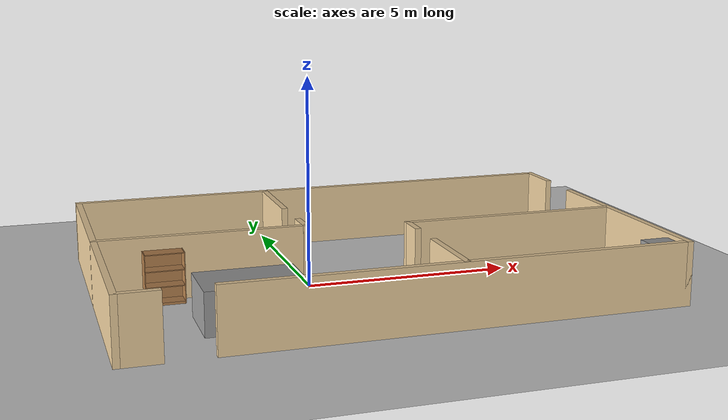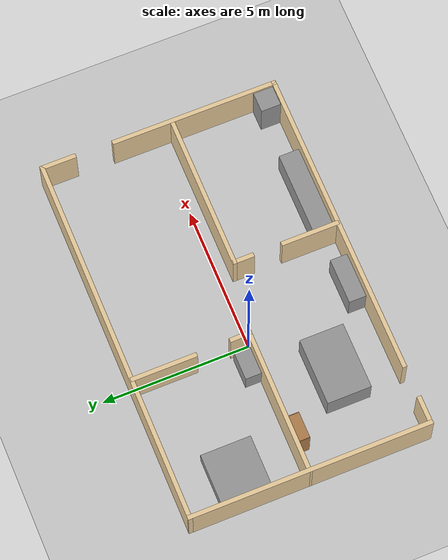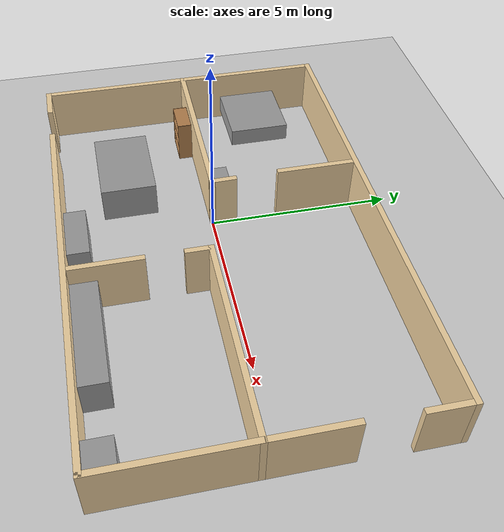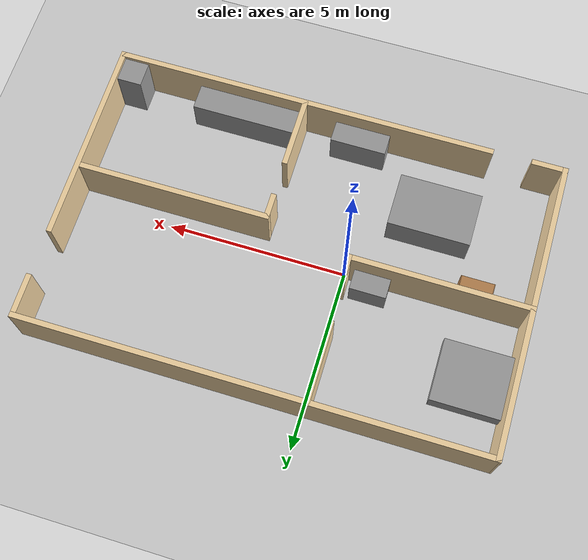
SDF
<sdf version="1.7">
 <world name="default">
  <light name="sun" type="directional">
   <pose>0 0 10 0 -0 0</pose>
   <diffuse>0.8 0.8 0.8 1</diffuse>
   <specular>0.2 0.2 0.2 1</specular>
   <attenuation>
    <range>1000</range>
    <constant>0.9</constant>
    <linear>0.01</linear>
    <quadratic>0.001</quadratic>
   </attenuation>
   <direction>-0.5 0.1 -0.9</direction>
   <spot><inner_angle>0</inner_angle><outer_angle>0</outer_angle><falloff>0</falloff></spot>
  </light>
  <model name="ground_plane">
   <static>1</static>
   <link name="link">
    <collision name="collision">
     <geometry><plane><normal>0 0 1</normal><size>100 100</size></plane></geometry>
     <surface><friction><ode><mu>100</mu><mu2>50</mu2></ode></friction></surface>
    </collision>
    <visual name="visual">
     <cast_shadows>0</cast_shadows>
     <geometry><plane><normal>0 0 1</normal><size>100 100</size></plane></geometry>
     <material>
      <script><uri>file://media/materials/scripts/gazebo.material</uri><name>Gazebo/Grey</name></script>
     </material>
    </visual>
   </link>
  </model>
  <gravity>0 0 -9.8</gravity>
  <magnetic_field>6e-06 2.3e-05 -4.2e-05</magnetic_field>
  <atmosphere type="adiabatic"/>
  <physics type="ode">
   <max_step_size>0.001</max_step_size>
   <real_time_factor>1</real_time_factor>
   <real_time_update_rate>1000</real_time_update_rate>
  </physics>
  <scene><ambient>0.4 0.4 0.4 1</ambient><background>0.7 0.7 0.7 1</background><shadows>1</shadows></scene>
  <spherical_coordinates>
   <surface_model>EARTH_WGS84</surface_model>
   <latitude_deg>0</latitude_deg>
   <longitude_deg>0</longitude_deg>
   <elevation>0</elevation>
   <heading_deg>0</heading_deg>
  </spherical_coordinates>
  <model name="RoboCup2021Home">
   <pose>1.3665 -0.22431 0 0 -0 0</pose>
   <link name="Wall_10">
    <collision name="Wall_10_Collision">
     <geometry><box><size>1.22996 0.15 1.5</size></box></geometry>
     <pose>0 0 0.75 0 -0 0</pose>
    </collision>
    <visual name="Wall_10_Visual">
     <pose>0 0 0.75 0 -0 0</pose>
     <geometry><box><size>1.22996 0.15 1.5</size></box></geometry>
     <material>
      <script><uri>file://media/materials/scripts/gazebo.material</uri><name>Gazebo/Grey</name></script>
      <ambient>0.921569 0.807843 0.615686 1</ambient>
     </material>
     <meta><layer>0</layer></meta>
    </visual>
    <pose>6.3425 3.706 0 0 -0 -1.5708</pose>
   </link>
   <link name="Wall_14">
    <collision name="Wall_14_Collision">
     <geometry><box><size>10.75 0.15 1.5</size></box></geometry>
     <pose>0 0 0.75 0 -0 0</pose>
    </collision>
    <visual name="Wall_14_Visual">
     <pose>0 0 0.75 0 -0 0</pose>
     <geometry><box><size>10.75 0.15 1.5</size></box></geometry>
     <material>
      <script><uri>file://media/materials/scripts/gazebo.material</uri><name>Gazebo/Grey</name></script>
      <ambient>0.921569 0.807843 0.615686 1</ambient>
     </material>
     <meta><layer>0</layer></meta>
    </visual>
    <pose>1.0105 -3.84 0 0 -0 0</pose>
   </link>
   <link name="Wall_15">
    <collision name="Wall_15_Collision">
     <geometry><box><size>5.75 0.15 1.5</size></box></geometry>
     <pose>0 0 0.75 0 -0 0</pose>
    </collision>
    <visual name="Wall_15_Visual">
     <pose>0 0 0.75 0 -0 0</pose>
     <geometry><box><size>5.75 0.15 1.5</size></box></geometry>
     <material>
      <script><uri>file://media/materials/scripts/gazebo.material</uri><name>Gazebo/Grey</name></script>
      <ambient>0.921569 0.807843 0.615686 1</ambient>
     </material>
     <meta><layer>0</layer></meta>
    </visual>
    <pose>6.3105 -1.04 0 0 -0 1.5708</pose>
   </link>
   <link name="Wall_20">
    <collision name="Wall_20_Collision">
     <geometry><box><size>5.05102 0.15 1.5</size></box></geometry>
     <pose>0 0 0.75 0 -0 0</pose>
    </collision>
    <visual name="Wall_20_Visual">
     <pose>0 0 0.75 0 -0 0</pose>
     <geometry><box><size>5.05102 0.15 1.5</size></box></geometry>
     <material>
      <script><uri>file://media/materials/scripts/gazebo.material</uri><name>Gazebo/Grey</name></script>
      <ambient>0.921569 0.807843 0.615686 1</ambient>
     </material>
     <meta><layer>0</layer></meta>
    </visual>
    <pose>-3.892 0.238497 0 0 -0 -0.002653</pose>
   </link>
   <link name="Wall_23">
    <collision name="Wall_23_Collision">
     <geometry><box><size>5.5 0.15 1.5</size></box></geometry>
     <pose>0 0 0.75 0 -0 0</pose>
    </collision>
    <visual name="Wall_23_Visual">
     <pose>0 0 0.75 0 -0 0</pose>
     <geometry><box><size>5.5 0.15 1.5</size></box></geometry>
     <material>
      <script><uri>file://media/materials/scripts/gazebo.material</uri><name>Gazebo/Grey</name></script>
      <ambient>0.921569 0.807843 0.615686 1</ambient>
     </material>
     <meta><layer>0</layer></meta>
    </visual>
    <pose>3.6355 -0.240003 0 0 -0 3.14159</pose>
   </link>
   <link name="Wall_25">
    <collision name="Wall_25_Collision">
     <geometry><box><size>0.75 0.15 1.5</size></box></geometry>
     <pose>0 0 0.75 0 -0 0</pose>
    </collision>
    <visual name="Wall_25_Visual">
     <pose>0 0 0.75 0 -0 0</pose>
     <geometry><box><size>0.75 0.15 1.5</size></box></geometry>
     <material>
      <script><uri>file://media/materials/scripts/gazebo.material</uri><name>Gazebo/Grey</name></script>
      <ambient>0.921569 0.807843 0.615686 1</ambient>
     </material>
     <meta><layer>0</layer></meta>
    </visual>
    <pose>0.9605 -0.540003 0 0 -0 -1.5708</pose>
   </link>
   <link name="Wall_27">
    <collision name="Wall_27_Collision">
     <geometry><box><size>2 0.15 1.5</size></box></geometry>
     <pose>0 0 0.75 0 -0 0</pose>
    </collision>
    <visual name="Wall_27_Visual">
     <pose>0 0 0.75 0 -0 0</pose>
     <geometry><box><size>2 0.15 1.5</size></box></geometry>
     <material>
      <script><uri>file://media/materials/scripts/gazebo.material</uri><name>Gazebo/Grey</name></script>
      <ambient>0.921569 0.807843 0.615686 1</ambient>
     </material>
     <meta><layer>0</layer></meta>
    </visual>
    <pose>0.9605 -2.865 0 0 -0 -1.5708</pose>
   </link>
   <link name="Wall_29">
    <collision name="Wall_29_Collision">
     <geometry><box><size>0.75 0.15 1.5</size></box></geometry>
     <pose>0 0 0.75 0 -0 0</pose>
    </collision>
    <visual name="Wall_29_Visual">
     <pose>0 0 0.75 0 -0 0</pose>
     <geometry><box><size>0.75 0.15 1.5</size></box></geometry>
     <material>
      <script><uri>file://media/materials/scripts/gazebo.material</uri><name>Gazebo/Grey</name></script>
      <ambient>0.921569 0.807843 0.615686 1</ambient>
     </material>
     <meta><layer>0</layer></meta>
    </visual>
    <pose>-1.448 0.531997 0 0 -0 1.59246</pose>
   </link>
   <link name="Wall_31">
    <collision name="Wall_31_Collision">
     <geometry><box><size>2.25 0.15 1.5</size></box></geometry>
     <pose>0 0 0.75 0 -0 0</pose>
    </collision>
    <visual name="Wall_31_Visual">
     <pose>0 0 0.75 0 -0 0</pose>
     <geometry><box><size>2.25 0.15 1.5</size></box></geometry>
     <material>
      <script><uri>file://media/materials/scripts/gazebo.material</uri><name>Gazebo/Grey</name></script>
      <ambient>0.921569 0.807843 0.615686 1</ambient>
     </material>
     <meta><layer>0</layer></meta>
    </visual>
    <pose>-1.4925 3.161 0 0 -0 1.5708</pose>
   </link>
   <link name="Wall_4">
    <collision name="Wall_4_Collision">
     <geometry><box><size>12.8356 0.15 1.5</size></box></geometry>
     <pose>0 0 0.75 0 -0 0</pose>
    </collision>
    <visual name="Wall_4_Visual">
     <pose>0 0 0.75 0 -0 0</pose>
     <geometry><box><size>12.8356 0.15 1.5</size></box></geometry>
     <material>
      <script><uri>file://media/materials/scripts/gazebo.material</uri><name>Gazebo/Grey</name></script>
      <ambient>0.921569 0.807843 0.615686 1</ambient>
     </material>
     <meta><layer>0</layer></meta>
    </visual>
    <pose>0 4.2455 0 0 -0 7.9e-05</pose>
   </link>
   <link name="Wall_6">
    <collision name="Wall_6_Collision">
     <geometry><box><size>8.25 0.15 1.5</size></box></geometry>
     <pose>0 0 0.75 0 -0 0</pose>
    </collision>
    <visual name="Wall_6_Visual">
     <pose>0 0 0.75 0 -0 0</pose>
     <geometry><box><size>8.25 0.15 1.5</size></box></geometry>
     <material>
      <script><uri>file://media/materials/scripts/gazebo.material</uri><name>Gazebo/Grey</name></script>
      <ambient>0.921569 0.807843 0.615686 1</ambient>
     </material>
     <meta><layer>0</layer></meta>
    </visual>
    <pose>-6.3425 0.194997 0 0 -0 -1.5708</pose>
   </link>
   <link name="Wall_8">
    <collision name="Wall_8_Collision">
     <geometry><box><size>1 0.15 1.5</size></box></geometry>
     <pose>0 0 0.75 0 -0 0</pose>
    </collision>
    <visual name="Wall_8_Visual">
     <pose>0 0 0.75 0 -0 0</pose>
     <geometry><box><size>1 0.15 1.5</size></box></geometry>
     <material>
      <script><uri>file://media/materials/scripts/gazebo.material</uri><name>Gazebo/Grey</name></script>
      <ambient>0.921569 0.807843 0.615686 1</ambient>
     </material>
     <meta><layer>0</layer></meta>
    </visual>
    <pose>-5.9175 -3.855 0 0 -0 0</pose>
   </link>
   <static>1</static>
  </model>
  <model name="bookshelf">
   <static>1</static>
   <link name="link">
    <inertial><mass>1</mass></inertial>
    <collision name="back">
     <pose>0 0.005 0.6 0 -0 0</pose>
     <geometry><box><size>0.9 0.01 1.2</size></box></geometry>
    </collision>
    <visual name="visual1">
     <pose>0 0.005 0.6 0 -0 0</pose>
     <geometry><box><size>0.9 0.01 1.2</size></box></geometry>
     <material>
      <script><uri>file://media/materials/scripts/gazebo.material</uri><name>Gazebo/Wood</name></script>
     </material>
    </visual>
    <collision name="left_side">
     <pose>0.45 -0.195 0.6 0 -0 0</pose>
     <geometry><box><size>0.02 0.4 1.2</size></box></geometry>
    </collision>
    <visual name="visual2">
     <pose>0.45 -0.195 0.6 0 -0 0</pose>
     <geometry><box><size>0.02 0.4 1.2</size></box></geometry>
     <material>
      <script><uri>file://media/materials/scripts/gazebo.material</uri><name>Gazebo/Wood</name></script>
     </material>
    </visual>
    <collision name="right_side">
     <pose>-0.45 -0.195 0.6 0 -0 0</pose>
     <geometry><box><size>0.02 0.4 1.2</size></box></geometry>
    </collision>
    <visual name="visual3">
     <pose>-0.45 -0.195 0.6 0 -0 0</pose>
     <geometry><box><size>0.02 0.4 1.2</size></box></geometry>
     <material>
      <script><uri>file://media/materials/scripts/gazebo.material</uri><name>Gazebo/Wood</name></script>
     </material>
    </visual>
    <collision name="bottom">
     <pose>0 -0.195 0.03 0 -0 0</pose>
     <geometry><box><size>0.88 0.4 0.06</size></box></geometry>
    </collision>
    <visual name="visual4">
     <pose>0 -0.195 0.03 0 -0 0</pose>
     <geometry><box><size>0.88 0.4 0.06</size></box></geometry>
     <material>
      <script><uri>file://media/materials/scripts/gazebo.material</uri><name>Gazebo/Wood</name></script>
     </material>
    </visual>
    <collision name="top">
     <pose>0 -0.195 1.19 0 -0 0</pose>
     <geometry><box><size>0.88 0.4 0.02</size></box></geometry>
    </collision>
    <visual name="visual5">
     <pose>0 -0.195 1.19 0 -0 0</pose>
     <geometry><box><size>0.88 0.4 0.02</size></box></geometry>
     <material>
      <script><uri>file://media/materials/scripts/gazebo.material</uri><name>Gazebo/Wood</name></script>
     </material>
    </visual>
    <collision name="low_shelf">
     <pose>0 -0.195 0.43 0 -0 0</pose>
     <geometry><box><size>0.88 0.4 0.02</size></box></geometry>
    </collision>
    <visual name="visual6">
     <pose>0 -0.195 0.43 0 -0 0</pose>
     <geometry><box><size>0.88 0.4 0.02</size></box></geometry>
     <material>
      <script><uri>file://media/materials/scripts/gazebo.material</uri><name>Gazebo/Wood</name></script>
     </material>
    </visual>
    <collision name="high_shelf">
     <pose>0 -0.195 0.8 0 -0 0</pose>
     <geometry><box><size>0.88 0.4 0.02</size></box></geometry>
    </collision>
    <visual name="visual7">
     <pose>0 -0.195 0.8 0 -0 0</pose>
     <geometry><box><size>0.88 0.4 0.02</size></box></geometry>
     <material>
      <script><uri>file://media/materials/scripts/gazebo.material</uri><name>Gazebo/Wood</name></script>
     </material>
    </visual>
   </link>
   <pose>-3.46624 -0.06181 0 0 -0 0</pose>
  </model>
  <model name="unit_box">
   <link name="link">
    <inertial>
     <mass>1</mass>
     <inertia>
      <ixx>0.166667</ixx>
      <ixy>0</ixy>
      <ixz>0</ixz>
      <iyy>0.166667</iyy>
      <iyz>0</iyz>
      <izz>0.166667</izz>
     </inertia>
    </inertial>
    <pose>0.145043 -0.038633 -0 0 -0 0</pose>
    <visual name="visual">
     <geometry><box><size>2.28 1.5 1</size></box></geometry>
     <material>
      <script><name>Gazebo/Grey</name><uri>file://media/materials/scripts/gazebo.material</uri></script>
      <shader type="pixel"><normal_map>__default__</normal_map></shader>
      <ambient>0.3 0.3 0.3 1</ambient>
      <diffuse>0.7 0.7 0.7 1</diffuse>
      <specular>0.01 0.01 0.01 1</specular>
      <emissive>0 0 0 1</emissive>
     </material>
    </visual>
    <collision name="collision">
     <geometry><box><size>2.28 1.5 1</size></box></geometry>
     <surface>
      <friction>
       <ode><mu>1</mu><mu2>1</mu2><fdir1>0 0 0</fdir1><slip1>0</slip1><slip2>0</slip2></ode>
       <torsional>
        <coefficient>1</coefficient>
        <patch_radius>0</patch_radius>
        <surface_radius>0</surface_radius>
        <use_patch_radius>1</use_patch_radius>
        <ode><slip>0</slip></ode>
       </torsional>
      </friction>
      <bounce><restitution_coefficient>0</restitution_coefficient><threshold>1e+06</threshold></bounce>
      <contact>
       <collide_without_contact>0</collide_without_contact>
       <collide_without_contact_bitmask>1</collide_without_contact_bitmask>
       <collide_bitmask>1</collide_bitmask>
       <ode>
        <soft_cfm>0</soft_cfm>
        <soft_erp>0.2</soft_erp>
        <kp>1e+13</kp>
        <kd>1</kd>
        <max_vel>0.01</max_vel>
        <min_depth>0</min_depth>
       </ode>
       <bullet>
        <split_impulse>1</split_impulse>
        <split_impulse_penetration_threshold>-0.01</split_impulse_penetration_threshold>
        <soft_cfm>0</soft_cfm>
        <soft_erp>0.2</soft_erp>
        <kp>1e+13</kp>
        <kd>1</kd>
       </bullet>
      </contact>
     </surface>
    </collision>
   </link>
   <link name="link_0">
    <inertial>
     <mass>1</mass>
     <inertia>
      <ixx>0.166667</ixx>
      <ixy>0</ixy>
      <ixz>0</ixz>
      <iyy>0.166667</iyy>
      <iyz>0</iyz>
      <izz>0.166667</izz>
     </inertia>
    </inertial>
    <pose>2.66017 -1.55949 -0 0 -0 0</pose>
    <visual name="visual">
     <geometry><box><size>1.56 0.6 1</size></box></geometry>
     <material>
      <lighting>1</lighting>
      <script><uri>file://media/materials/scripts/gazebo.material</uri><name>Gazebo/Grey</name></script>
      <shader type="pixel"><normal_map>__default__</normal_map></shader>
      <ambient>0.3 0.3 0.3 1</ambient>
      <diffuse>0.7 0.7 0.7 1</diffuse>
      <specular>0.01 0.01 0.01 1</specular>
      <emissive>0 0 0 1</emissive>
     </material>
    </visual>
    <collision name="collision">
     <geometry><box><size>1.56 0.6 1</size></box></geometry>
     <surface>
      <friction>
       <ode><mu>1</mu><mu2>1</mu2><fdir1>0 0 0</fdir1><slip1>0</slip1><slip2>0</slip2></ode>
       <torsional>
        <coefficient>1</coefficient>
        <patch_radius>0</patch_radius>
        <surface_radius>0</surface_radius>
        <use_patch_radius>1</use_patch_radius>
        <ode><slip>0</slip></ode>
       </torsional>
      </friction>
      <bounce><restitution_coefficient>0</restitution_coefficient><threshold>1e+06</threshold></bounce>
      <contact>
       <collide_without_contact>0</collide_without_contact>
       <collide_without_contact_bitmask>1</collide_without_contact_bitmask>
       <collide_bitmask>1</collide_bitmask>
       <ode>
        <soft_cfm>0</soft_cfm>
        <soft_erp>0.2</soft_erp>
        <kp>1e+13</kp>
        <kd>1</kd>
        <max_vel>0.01</max_vel>
        <min_depth>0</min_depth>
       </ode>
       <bullet>
        <split_impulse>1</split_impulse>
        <split_impulse_penetration_threshold>-0.01</split_impulse_penetration_threshold>
        <soft_cfm>0</soft_cfm>
        <soft_erp>0.2</soft_erp>
        <kp>1e+13</kp>
        <kd>1</kd>
       </bullet>
      </contact>
     </surface>
    </collision>
   </link>
   <link name="link_1">
    <inertial>
     <mass>1</mass>
     <inertia>
      <ixx>0.166667</ixx>
      <ixy>0</ixy>
      <ixz>0</ixz>
      <iyy>0.166667</iyy>
      <iyz>0</iyz>
      <izz>0.166667</izz>
     </inertia>
    </inertial>
    <pose>5.92828 -1.49889 0 0 -0 0</pose>
    <visual name="visual">
     <geometry><box><size>3 0.7 1</size></box></geometry>
     <material>
      <lighting>1</lighting>
      <script><uri>file://media/materials/scripts/gazebo.material</uri><name>Gazebo/Grey</name></script>
      <shader type="pixel"><normal_map>__default__</normal_map></shader>
      <ambient>0.3 0.3 0.3 1</ambient>
      <diffuse>0.7 0.7 0.7 1</diffuse>
      <specular>0.01 0.01 0.01 1</specular>
      <emissive>0 0 0 1</emissive>
     </material>
    </visual>
    <collision name="collision">
     <geometry><box><size>3 0.7 1</size></box></geometry>
     <surface>
      <friction>
       <ode><mu>1</mu><mu2>1</mu2><fdir1>0 0 0</fdir1><slip1>0</slip1><slip2>0</slip2></ode>
       <torsional>
        <coefficient>1</coefficient>
        <patch_radius>0</patch_radius>
        <surface_radius>0</surface_radius>
        <use_patch_radius>1</use_patch_radius>
        <ode><slip>0</slip></ode>
       </torsional>
      </friction>
      <bounce><restitution_coefficient>0</restitution_coefficient><threshold>1e+06</threshold></bounce>
      <contact>
       <collide_without_contact>0</collide_without_contact>
       <collide_without_contact_bitmask>1</collide_without_contact_bitmask>
       <collide_bitmask>1</collide_bitmask>
       <ode>
        <soft_cfm>0</soft_cfm>
        <soft_erp>0.2</soft_erp>
        <kp>1e+13</kp>
        <kd>1</kd>
        <max_vel>0.01</max_vel>
        <min_depth>0</min_depth>
       </ode>
       <bullet>
        <split_impulse>1</split_impulse>
        <split_impulse_penetration_threshold>-0.01</split_impulse_penetration_threshold>
        <soft_cfm>0</soft_cfm>
        <soft_erp>0.2</soft_erp>
        <kp>1e+13</kp>
        <kd>1</kd>
       </bullet>
      </contact>
     </surface>
    </collision>
   </link>
   <link name="link_2">
    <inertial>
     <mass>1</mass>
     <inertia>
      <ixx>0.166667</ixx>
      <ixy>0</ixy>
      <ixz>0</ixz>
      <iyy>0.166667</iyy>
      <iyz>0</iyz>
      <izz>0.166667</izz>
     </inertia>
    </inertial>
    <pose>9.31007 -1.51423 -0 0 -0 0</pose>
    <visual name="visual">
     <geometry><box><size>0.7 0.7 1.8</size></box></geometry>
     <material>
      <lighting>1</lighting>
      <script><uri>file://media/materials/scripts/gazebo.material</uri><name>Gazebo/Grey</name></script>
      <shader type="pixel"><normal_map>__default__</normal_map></shader>
      <ambient>0.3 0.3 0.3 1</ambient>
      <diffuse>0.7 0.7 0.7 1</diffuse>
      <specular>0.01 0.01 0.01 1</specular>
      <emissive>0 0 0 1</emissive>
     </material>
    </visual>
    <collision name="collision">
     <geometry><box><size>0.7 0.7 1.8</size></box></geometry>
     <surface>
      <friction>
       <ode><mu>1</mu><mu2>1</mu2><fdir1>0 0 0</fdir1><slip1>0</slip1><slip2>0</slip2></ode>
       <torsional>
        <coefficient>1</coefficient>
        <patch_radius>0</patch_radius>
        <surface_radius>0</surface_radius>
        <use_patch_radius>1</use_patch_radius>
        <ode><slip>0</slip></ode>
       </torsional>
      </friction>
      <bounce><restitution_coefficient>0</restitution_coefficient><threshold>1e+06</threshold></bounce>
      <contact>
       <collide_without_contact>0</collide_without_contact>
       <collide_without_contact_bitmask>1</collide_without_contact_bitmask>
       <collide_bitmask>1</collide_bitmask>
       <ode>
        <soft_cfm>0</soft_cfm>
        <soft_erp>0.2</soft_erp>
        <kp>1e+13</kp>
        <kd>1</kd>
        <max_vel>0.01</max_vel>
        <min_depth>0</min_depth>
       </ode>
       <bullet>
        <split_impulse>1</split_impulse>
        <split_impulse_penetration_threshold>-0.01</split_impulse_penetration_threshold>
        <soft_cfm>0</soft_cfm>
        <soft_erp>0.2</soft_erp>
        <kp>1e+13</kp>
        <kd>1</kd>
       </bullet>
      </contact>
     </surface>
    </collision>
   </link>
   <link name="link_3">
    <inertial>
     <mass>1</mass>
     <inertia>
      <ixx>0.166667</ixx>
      <ixy>0</ixy>
      <ixz>0</ixz>
      <iyy>0.166667</iyy>
      <iyz>0</iyz>
      <izz>0.166667</izz>
     </inertia>
    </inertial>
    <pose>-1.93149 4.17584 -0 0 -0 0</pose>
    <visual name="visual">
     <geometry><box><size>1.9 1.7 0.5</size></box></geometry>
     <material>
      <lighting>1</lighting>
      <script><uri>file://media/materials/scripts/gazebo.material</uri><name>Gazebo/Grey</name></script>
      <shader type="pixel"><normal_map>__default__</normal_map></shader>
      <ambient>0.3 0.3 0.3 1</ambient>
      <diffuse>0.7 0.7 0.7 1</diffuse>
      <specular>0.01 0.01 0.01 1</specular>
      <emissive>0 0 0 1</emissive>
     </material>
    </visual>
    <collision name="collision">
     <geometry><box><size>1.9 1.7 0.5</size></box></geometry>
     <surface>
      <friction>
       <ode><mu>1</mu><mu2>1</mu2><fdir1>0 0 0</fdir1><slip1>0</slip1><slip2>0</slip2></ode>
       <torsional>
        <coefficient>1</coefficient>
        <patch_radius>0</patch_radius>
        <surface_radius>0</surface_radius>
        <use_patch_radius>1</use_patch_radius>
        <ode><slip>0</slip></ode>
       </torsional>
      </friction>
      <bounce><restitution_coefficient>0</restitution_coefficient><threshold>1e+06</threshold></bounce>
      <contact>
       <collide_without_contact>0</collide_without_contact>
       <collide_without_contact_bitmask>1</collide_without_contact_bitmask>
       <collide_bitmask>1</collide_bitmask>
       <ode>
        <soft_cfm>0</soft_cfm>
        <soft_erp>0.2</soft_erp>
        <kp>1e+13</kp>
        <kd>1</kd>
        <max_vel>0.01</max_vel>
        <min_depth>0</min_depth>
       </ode>
       <bullet>
        <split_impulse>1</split_impulse>
        <split_impulse_penetration_threshold>-0.01</split_impulse_penetration_threshold>
        <soft_cfm>0</soft_cfm>
        <soft_erp>0.2</soft_erp>
        <kp>1e+13</kp>
        <kd>1</kd>
       </bullet>
      </contact>
     </surface>
    </collision>
   </link>
   <link name="link_4">
    <inertial>
     <mass>1</mass>
     <inertia>
      <ixx>0.166667</ixx>
      <ixy>0</ixy>
      <ixz>0</ixz>
      <iyy>0.166667</iyy>
      <iyz>0</iyz>
      <izz>0.166667</izz>
     </inertia>
    </inertial>
    <pose>1.26464 2.4745 -0 0 -0 0</pose>
    <visual name="visual">
     <geometry><box><size>1 0.6 0.8</size></box></geometry>
     <material>
      <lighting>1</lighting>
      <script><uri>file://media/materials/scripts/gazebo.material</uri><name>Gazebo/Grey</name></script>
      <shader type="pixel"><normal_map>__default__</normal_map></shader>
      <ambient>0.3 0.3 0.3 1</ambient>
      <diffuse>0.7 0.7 0.7 1</diffuse>
      <specular>0.01 0.01 0.01 1</specular>
      <emissive>0 0 0 1</emissive>
     </material>
    </visual>
    <collision name="collision">
     <geometry><box><size>1 0.6 0.8</size></box></geometry>
     <surface>
      <friction>
       <ode><mu>1</mu><mu2>1</mu2><fdir1>0 0 0</fdir1><slip1>0</slip1><slip2>0</slip2></ode>
       <torsional>
        <coefficient>1</coefficient>
        <patch_radius>0</patch_radius>
        <surface_radius>0</surface_radius>
        <use_patch_radius>1</use_patch_radius>
        <ode><slip>0</slip></ode>
       </torsional>
      </friction>
      <bounce><restitution_coefficient>0</restitution_coefficient><threshold>1e+06</threshold></bounce>
      <contact>
       <collide_without_contact>0</collide_without_contact>
       <collide_without_contact_bitmask>1</collide_without_contact_bitmask>
       <collide_bitmask>1</collide_bitmask>
       <ode>
        <soft_cfm>0</soft_cfm>
        <soft_erp>0.2</soft_erp>
        <kp>1e+13</kp>
        <kd>1</kd>
        <max_vel>0.01</max_vel>
        <min_depth>0</min_depth>
       </ode>
       <bullet>
        <split_impulse>1</split_impulse>
        <split_impulse_penetration_threshold>-0.01</split_impulse_penetration_threshold>
        <soft_cfm>0</soft_cfm>
        <soft_erp>0.2</soft_erp>
        <kp>1e+13</kp>
        <kd>1</kd>
       </bullet>
      </contact>
     </surface>
    </collision>
   </link>
   <static>0</static>
   <pose>-2.04531 -2.14344 0.499993 -9e-06 -0 0</pose>
  </model>
 </world>
</sdf>
